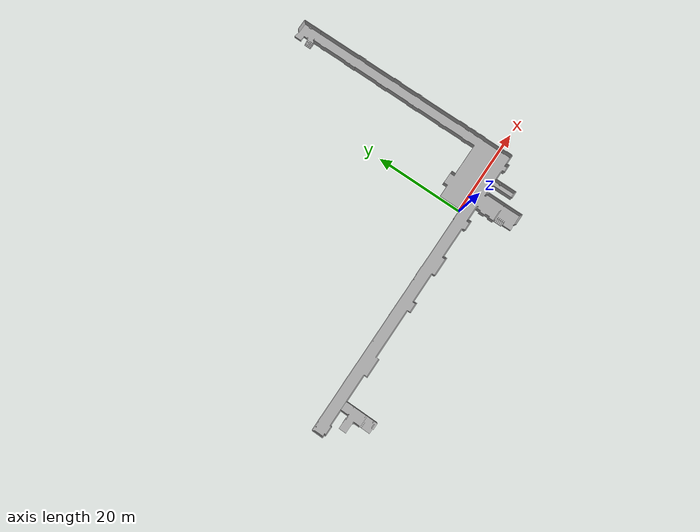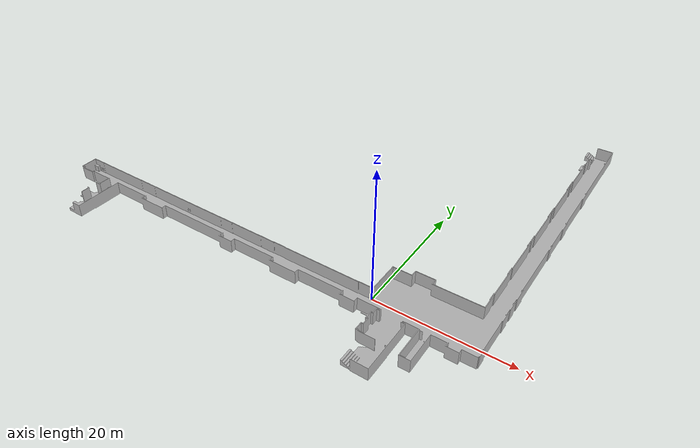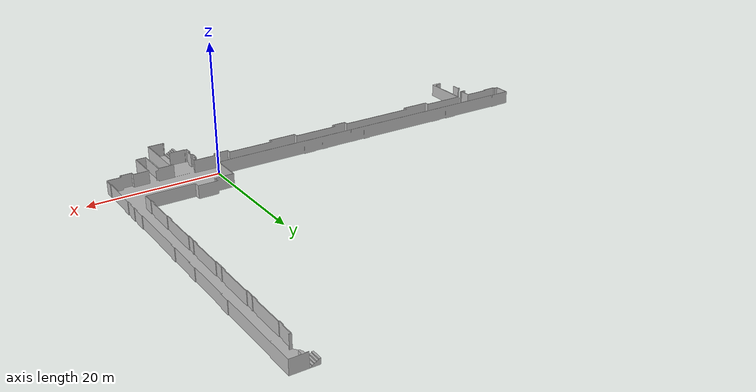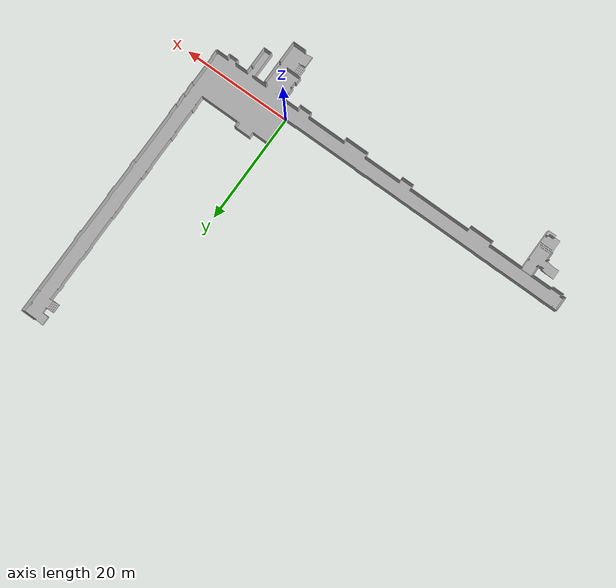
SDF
<sdf version='1.5'>
  <world name='default'>
    <!-- A global light source -->
    <include>
     <uri>model://sun</uri>
    </include>

    <!-- A ground plane -->

    <physics type="ode">
     <real_time_update_rate>100.0</real_time_update_rate>
     <max_step_size>0.01</max_step_size>
     <real_time_factor>1</real_time_factor>
     <ode>
      <solver>
       <type>quick</type>
       <iters>150</iters>
       <precon_iters>0</precon_iters>
       <sor>1.400000</sor>
       <use_dynamic_moi_rescaling>1</use_dynamic_moi_rescaling>
      </solver>
      <constraints>
        <cfm>0.001</cfm>
        <erp>0.2</erp>
        <contact_max_correcting_vel>2000.000000</contact_max_correcting_vel>
        <contact_surface_layer>0.001000</contact_surface_layer>
      </constraints>
     </ode>
    </physics>

    <!-- Load world -->
    <include>
      <uri>model://floor_3_v2</uri>
    </include>

    <scene>
      <ambient>0.4 0.4 0.4 1</ambient>
      <background>0.7 0.7 0.7 1</background>
      <shadows>false</shadows>
    </scene>

    <gui fullscreen='0'>
     <camera name='user camera'>
       <pose>0.8 0.0 12.0 0 1.5708 0</pose>
       <view_controller>orbit</view_controller>
     </camera>
    </gui>
  </world>
</sdf>

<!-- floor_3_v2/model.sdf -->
<sdf version='1.5'>
  <model name="floor_3_v2">
    <static>1</static>

    <link name="link">
      <collision name="collision">
        <pose>0 0 -0.05 0 0 0</pose>
        <geometry>
          <mesh>
            <uri>model://floor_3_v2/meshes/floor_3_v2.dae</uri>
            <scale>0.001 0.001 0.001</scale>
          </mesh>
        </geometry>
        <surface>
					<friction>
						<ode>
							<mu>10000</mu>
							<mu2>10000</mu2>
						</ode>
					</friction>
				</surface>
      </collision>
      <visual name="visual">
        <pose>0 0 -0.05 0 0 0</pose>
        <geometry>
          <mesh>
            <uri>model://floor_3_v2/meshes/floor_3_v2.dae</uri>
            <scale>0.001 0.001 0.001</scale>
          </mesh>
        </geometry>
      </visual>
    </link>
  </model>
</sdf>
